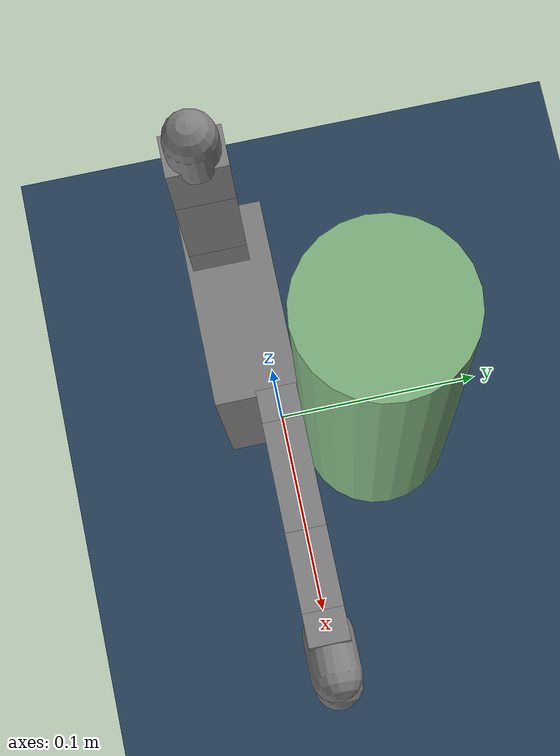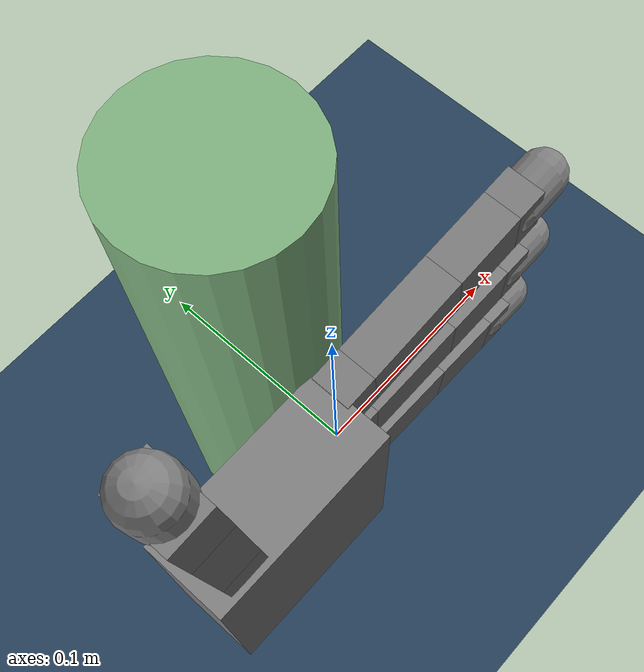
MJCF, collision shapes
<mujoco model="right_shadow_hand scene">
  <include file="right_hand_Sensor_Motor.xml"/>

  <statistic extent="0.3" center="0.3 0 0"/>

  <visual>
    <rgba haze="0.15 0.25 0.35 1"/>
    <quality shadowsize="8192"/>
    <global azimuth="220" elevation="-30"/>
  </visual>

  <asset>
    <texture type="skybox" builtin="gradient" rgb1="0.3 0.5 0.7" rgb2="0 0 0" width="512" height="3072"/>
    <texture type="2d" name="groundplane" builtin="checker" mark="edge" rgb1="0.2 0.3 0.4" rgb2="0.1 0.2 0.3"
      markrgb="0.8 0.8 0.8" width="300" height="300"/>
    <material name="groundplane" texture="groundplane" texuniform="true" texrepeat="5 5" reflectance="0.2"/>
  </asset>

  <worldbody>
    <light pos="0 0 1"/>
    <light pos="0.3 0 1.5" dir="0 0 -1" directional="true"/>
    <geom name="floor" pos="0 0 -0.1" size="0 0 0.05" type="plane" material="groundplane"/>
    <body name="object" pos="0.0 0.05 0.035">
      <freejoint/>
      <geom type="cylinder" size="0.04 0.13" rgba="0.5 0.7 0.5 1" condim="6" priority="1"
        friction="0.5 0.01 0.003" solimp="0.9 0.95 0.001 0.5 2"/>
    </body>
  </worldbody>
</mujoco>

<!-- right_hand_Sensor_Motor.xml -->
<mujoco model="allegro_right">
  <compiler angle="radian" meshdir="assets" autolimits="true"/>
  <option cone="elliptic" impratio="10"/>

  <default>
    <default class="allegro_right">
      <joint axis="0 1 0" damping=".1" type="hinge"/>
      <position kp="1"/>
      <geom density="800"/>

      <default class="visual">
        <geom type="mesh" contype="0" conaffinity="0" group="2" material="black"/>
        <default class="palm_visual">
          <geom mesh="base_link"/>
        </default>
        <default class="base_visual">
          <geom mesh="link_0.0"/>
        </default>
        <default class="proximal_visual">
          <geom mesh="link_1.0"/>
        </default>
        <default class="medial_visual">
          <geom mesh="link_2.0"/>
        </default>
        <default class="distal_visual">
          <geom mesh="link_3.0"/>
        </default>
        <default class="fingertip_visual">
          <geom pos="0 0 0.0267" material="white" mesh="link_3.0_tip"/>
        </default>
        <default class="thumbtip_visual">
          <geom pos="0 0 0.0423" material="white" mesh="link_15.0_tip"/>
        </default>
      </default>

      <default class="collision">
        <geom group="3" type="box" mass="0"/>
        <default class="palm_collision">
          <geom size="0.0204 0.0565 0.0475" pos="-0.0093 0 -0.0475"/>
        </default>
        <default class="base_collision">
          <geom size="0.0098 0.01375 0.0082" pos="0 0 0.0082"/>
          <default class="thumb_base_collision">
            <geom size="0.0179 0.017 0.02275" pos="-0.0179 0.009 0.0145"/>
          </default>
        </default>
        <default class="proximal_collision">
          <geom size="0.0098 0.01375 0.027" pos="0 0 0.027"/>
          <default class="thumb_proximal_collision">
            <geom size="0.0098 0.01375 0.00885" pos="0 0 0.00885"/>
          </default>
        </default>
        <default class="medial_collision">
          <geom size="0.0098 0.01375 0.0192" pos="0 0 0.0192"/>
          <default class="thumb_medial_collision">
            <geom size="0.0098 0.01375 0.0257" pos="0 0 0.0257"/>
          </default>
        </default>
        <default class="distal_collision">
          <geom size="0.0098 0.01375 0.008" pos="0 0 0.008"/>
          <default class="thumb_distal_collision">
            <geom size="0.0098 0.01375 0.0157" pos="0 0 0.0157"/>
          </default>
        </default>
        <default class="fingertip_collision">
          <geom type="capsule" size="0.012 0.01" pos="0 0 0.019"/>
          <default class="thumbtip_collision">
            <geom type="capsule" size="0.012 0.008" pos="0 0 0.035"/>
          </default>
        </default>
      </default>

      <default class="base">
        <joint axis="0 0 1" range="-0.47 0.47" type="hinge"/>
        <position ctrlrange="-0.47 0.47"/>
      </default>
      <default class="proximal">
        <joint range="-0.196 1.61" type="hinge"/>
        <position ctrlrange="-0.196 1.61"/>
      </default>
      <default class="medial">
        <joint range="-0.174 1.709" type="hinge"/>
        <position ctrlrange="-0.174 1.709"/>
      </default>
      <default class="distal">
        <joint range="-0.227 1.618" type="hinge"/>
        <position ctrlrange="-0.227 1.618"/>
      </default>
      <default class="thumb_base">
        <joint axis="-1 0 0" range="0.263 1.396" type="hinge"/>
        <position ctrlrange="0.263 1.396"/>
      </default>
      <default class="thumb_proximal">
        <joint axis="0 0 1" range="-0.105 1.163" type="hinge"/>
        <position ctrlrange="-0.105 1.163"/>
      </default>
      <default class="thumb_medial">
        <joint range="-0.189 1.644" type="hinge"/>
        <position ctrlrange="-0.189 1.644"/>
      </default>
      <default class="thumb_distal">
        <joint range="-0.162 1.719" type="hinge"/>
        <position ctrlrange="-0.162 1.719"/>
      </default>
    </default>
  </default>

  <asset>
    <material name="black" rgba="0.2 0.2 0.2 1"/>
    <material name="white" rgba="0.9 0.9 0.9 1"/>

    <mesh file="base_link.stl"/>
    <mesh file="link_0.0.stl"/>
    <mesh file="link_1.0.stl"/>
    <mesh file="link_2.0.stl"/>
    <mesh file="link_3.0.stl"/>
    <mesh file="link_3.0_tip.stl"/>
    <mesh file="link_12.0_right.stl"/>
    <mesh file="link_13.0.stl"/>
    <mesh file="link_14.0.stl"/>
    <mesh file="link_15.0.stl"/>
    <mesh file="link_15.0_tip.stl"/>
  </asset>

  <worldbody>
    <!-- Adding a base body for moving the hand up and down -->
    <body name="hand_base" pos="0 0 0"> <!-- Initial position set to z=0 to keep it above ground -->
      <joint name="hand_x_joint" type="slide" axis="1 0 0" range="-0.2 0.2"/>
      <joint name="hand_y_joint" type="slide" axis="0 1 0" range="-0.2 0.2"/>
      <joint name="hand_z_joint" type="slide" axis="0 0 1" range="-0.2 0.2"/>
      <body name="palm" quat="1 1 1 1" childclass="allegro_right">
        <geom class="palm_visual" mesh="base_link"/>
        <geom class="palm_collision"/>
        <!-- First finger -->
        <body name="ff_base" pos="0 0.0435 -0.001542" quat="0.999048 -0.0436194 0 0">
          <joint name="ffj0" class="base"/>
          <geom class="base_visual"/>
          <geom class="base_collision"/>
          <body name="ff_proximal" pos="0 0 0.0164">
            <joint name="ffj1" class="proximal"/>
            <geom class="proximal_visual"/>
            <geom class="proximal_collision"/>
            <body name="ff_medial" pos="0 0 0.054">
              <joint name="ffj2" class="medial"/>
              <geom class="medial_visual"/>
              <geom class="medial_collision"/>
              <body name="ff_distal" pos="0 0 0.0384">
                <joint name="ffj3" class="distal"/>
                <geom class="distal_visual"/>
                <geom class="distal_collision"/>
                <body name="ff_tip">
                  <geom class="fingertip_visual"/>
                  <geom class="fingertip_collision"/>
                  <!-- Add site for touch sensor -->
                  <site name="tip_ff" pos="0 0 0.0267" size="0.005" type="sphere"/>
                </body>
              </body>
            </body>
          </body>
        </body>
        <!-- Middle finger -->
        <body name="mf_base" pos="0 0 0.0007">
          <joint name="mfj0" class="base"/>
          <geom class="base_visual"/>
          <geom class="base_collision"/>
          <body name="mf_proximal" pos="0 0 0.0164">
            <joint name="mfj1" class="proximal"/>
            <geom class="proximal_visual"/>
            <geom class="proximal_collision"/>
            <body name="mf_medial" pos="0 0 0.054">
              <joint name="mfj2" class="medial"/>
              <geom class="medial_visual"/>
              <geom class="medial_collision"/>
              <body name="mf_distal" pos="0 0 0.0384">
                <joint name="mfj3" class="distal"/>
                <geom class="distal_visual"/>
                <geom class="distal_collision"/>
                <body name="mf_tip">
                  <geom class="fingertip_visual"/>
                  <geom class="fingertip_collision"/>
                  <!-- Add site for touch sensor -->
                  <site name="tip_mf" pos="0 0 0.0267" size="0.005" type="sphere"/>
                </body>
              </body>
            </body>
          </body>
        </body>
        <!-- Ring finger -->
        <body name="rf_base" pos="0 -0.0435 -0.001542" quat="0.999048 0.0436194 0 0">
          <joint name="rfj0" class="base"/>
          <geom class="base_visual"/>
          <geom class="base_collision"/>
          <body name="rf_proximal" pos="0 0 0.0164">
            <joint name="rfj1" class="proximal"/>
            <geom class="proximal_visual"/>
            <geom class="proximal_collision"/>
            <body name="rf_medial" pos="0 0 0.054">
              <joint name="rfj2" class="medial"/>
              <geom class="medial_visual"/>
              <geom class="medial_collision"/>
              <body name="rf_distal" pos="0 0 0.0384">
                <joint name="rfj3" class="distal"/>
                <geom class="distal_visual"/>
                <geom class="distal_collision"/>
                <body name="rf_tip">
                  <geom class="fingertip_visual"/>
                  <geom class="fingertip_collision"/>
                  <!-- Add site for touch sensor -->
                  <site name="tip_rf" pos="0 0 0.0267" size="0.005" type="sphere"/>
                </body>
              </body>
            </body>
          </body>
        </body>
        <!-- Thumb -->
        <body name="th_base" pos="-0.0182 0.019333 -0.045987" quat="0.477714 -0.521334 -0.521334 -0.477714">
          <joint name="thj0" class="thumb_base"/>
          <geom class="visual" mesh="link_12.0_right"/>
          <geom class="thumb_base_collision"/>
          <body name="th_proximal" pos="-0.027 0.005 0.0399">
            <joint name="thj1" class="thumb_proximal"/>
            <geom class="visual" mesh="link_13.0"/>
            <geom class="thumb_proximal_collision"/>
            <body name="th_medial" pos="0 0 0.0177">
              <joint name="thj2" class="thumb_medial"/>
              <geom class="visual" mesh="link_14.0"/>
              <geom class="thumb_medial_collision"/>
              <body name="th_distal" pos="0 0 0.0514">
                <joint name="thj3" class="thumb_distal"/>
                <geom class="visual" mesh="link_15.0"/>
                <geom class="thumb_distal_collision"/>
                <body name="th_tip">
                  <geom class="thumbtip_visual"/>
                  <geom class="thumbtip_collision"/>
                  <!-- Add site for touch sensor -->
                  <site name="tip_th" pos="0 0 0.0423" size="0.005" type="sphere"/>
                </body>
              </body>
            </body>
          </body>
        </body>
      </body>
    </body>
  </worldbody>

  <contact>
    <exclude body1="palm" body2="ff_base"/>
    <exclude body1="palm" body2="mf_base"/>
    <exclude body1="palm" body2="rf_base"/>
    <exclude body1="palm" body2="th_base"/>
    <exclude body1="palm" body2="th_proximal"/>
  </contact>

<actuator>
    <position name="hand_x_actuator" joint="hand_x_joint" ctrlrange="-4 4" kp="10"/>
    <position name="hand_y_actuator" joint="hand_y_joint" ctrlrange="-4 4" kp="10"/>
    <position name="hand_z_actuator" joint="hand_z_joint" ctrlrange="0 2" kp="15"/>
    <motor name="ffa0" joint="ffj0" class="base" gear="1" ctrllimited="true" ctrlrange="-4 4" />
    <motor name="ffa1" joint="ffj1" class="proximal" gear="1" ctrllimited="true" ctrlrange="-4 4" />
    <motor name="ffa2" joint="ffj2" class="medial" gear="1" ctrllimited="true" ctrlrange="-4 4" />
    <motor name="ffa3" joint="ffj3" class="distal" gear="1" ctrllimited="true" ctrlrange="-4 4" />
    <motor name="mfa0" joint="mfj0" class="base" gear="1" ctrllimited="true" ctrlrange="-4 4" />
    <motor name="mfa1" joint="mfj1" class="proximal" gear="1" ctrllimited="true" ctrlrange="-4 4" />
    <motor name="mfa2" joint="mfj2" class="medial" gear="1" ctrllimited="true" ctrlrange="-4 4" />
    <motor name="mfa3" joint="mfj3" class="distal" gear="1" ctrllimited="true" ctrlrange="-4 4" />
    <motor name="rfa0" joint="rfj0" class="base" gear="1" ctrllimited="true" ctrlrange="-4 4" />
    <motor name="rfa1" joint="rfj1" class="proximal" gear="1" ctrllimited="true" ctrlrange="-4 4" />
    <motor name="rfa2" joint="rfj2" class="medial" gear="1" ctrllimited="true" ctrlrange="-4 4" />
    <motor name="rfa3" joint="rfj3" class="distal" gear="1" ctrllimited="true" ctrlrange="-4 4" />
    <motor name="tha0" joint="thj0" class="thumb_base" gear="1" ctrllimited="true" ctrlrange="-4 4" />
    <motor name="tha1" joint="thj1" class="thumb_proximal" gear="1" ctrllimited="true" ctrlrange="-4 4" />
    <motor name="tha2" joint="thj2" class="thumb_medial" gear="1" ctrllimited="true" ctrlrange="-4 4" />
    <motor name="tha3" joint="thj3" class="thumb_distal" gear="1" ctrllimited="true" ctrlrange="-4 4" />
</actuator>

  <sensor>
    <!-- Touch sensors for fingertips -->
    <force name="sensor_ff" site="tip_ff"/>
    <force name="sensor_mf" site="tip_mf"/>
    <force name="sensor_rf" site="tip_rf"/>
    <force name="sensor_th" site="tip_th"/>

    <torque name="torque_sensor_ffa0" site="tip_ff"/>
    <torque name="torque_sensor_ffa1" site="tip_ff"/>
    <torque name="torque_sensor_ffa2" site="tip_ff"/>
    <torque name="torque_sensor_ffa3" site="tip_ff"/>
    <torque name="torque_sensor_mfa0" site="tip_mf"/>
    <torque name="torque_sensor_mfa1" site="tip_mf"/>
    <torque name="torque_sensor_mfa2" site="tip_mf"/>
    <torque name="torque_sensor_mfa3" site="tip_mf"/>
    <torque name="torque_sensor_rfa0" site="tip_rf"/>
    <torque name="torque_sensor_rfa1" site="tip_rf"/>
    <torque name="torque_sensor_rfa2" site="tip_rf"/>
    <torque name="torque_sensor_rfa3" site="tip_rf"/>
    <torque name="torque_sensor_tha0" site="tip_th"/>
    <torque name="torque_sensor_tha1" site="tip_th"/>
    <torque name="torque_sensor_tha2" site="tip_th"/>
    <torque name="torque_sensor_tha3" site="tip_th"/>
  </sensor>
</mujoco>
